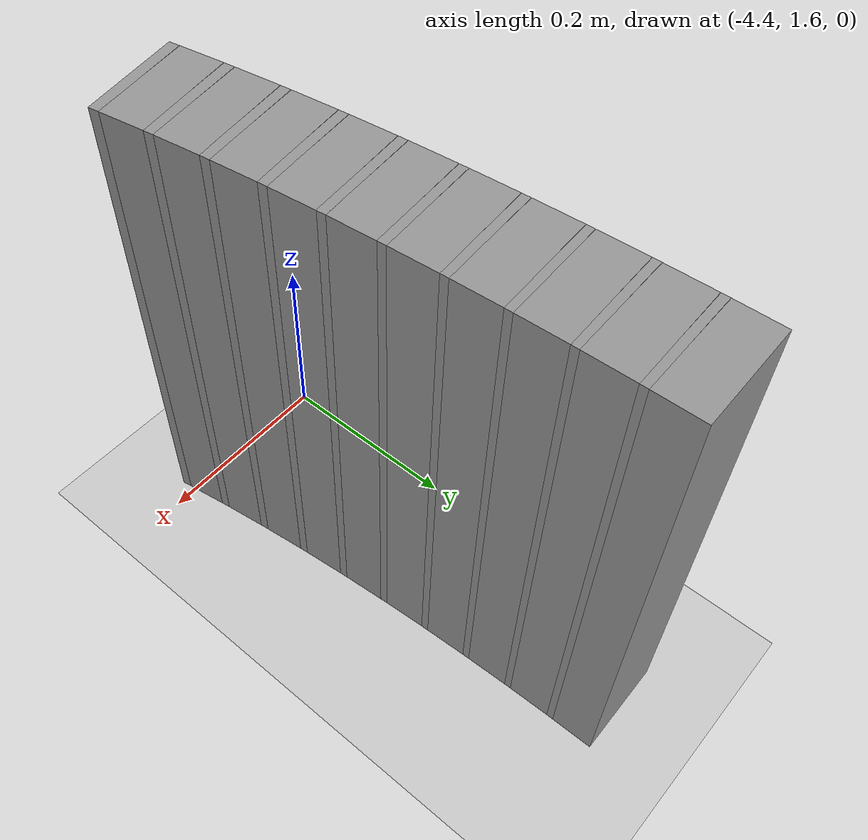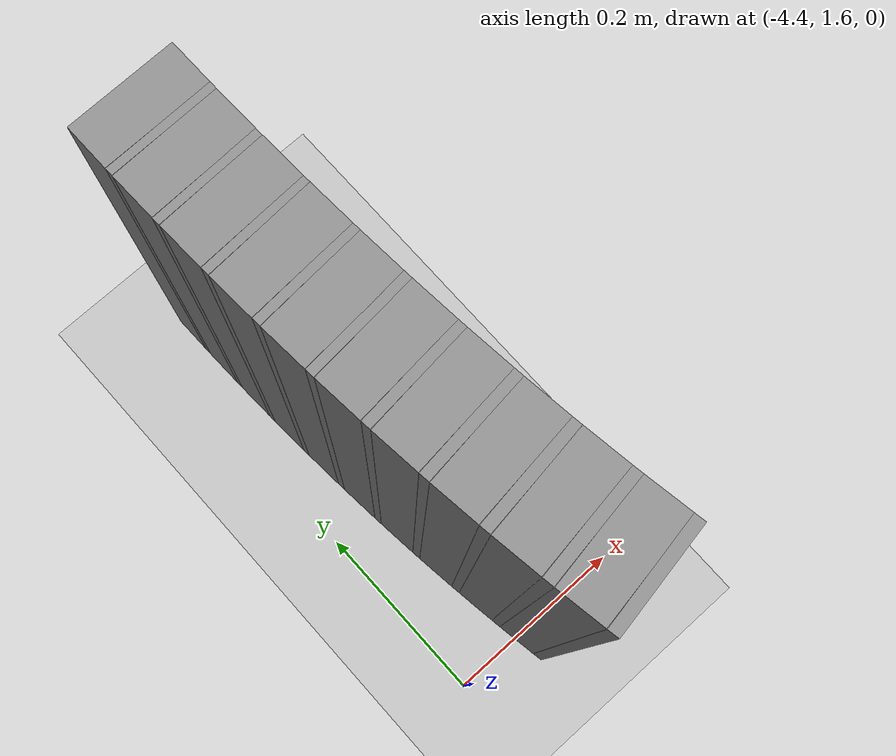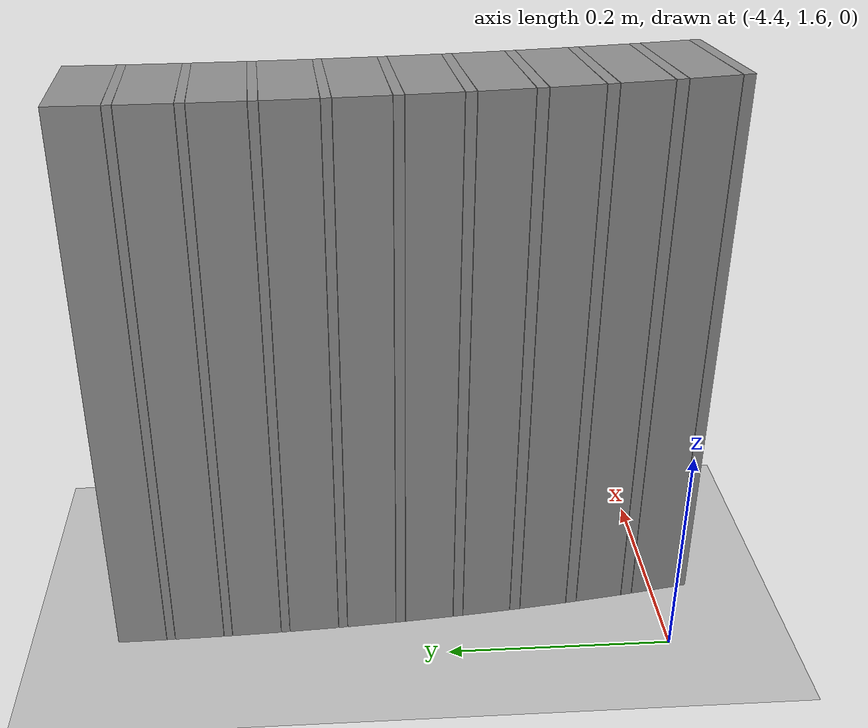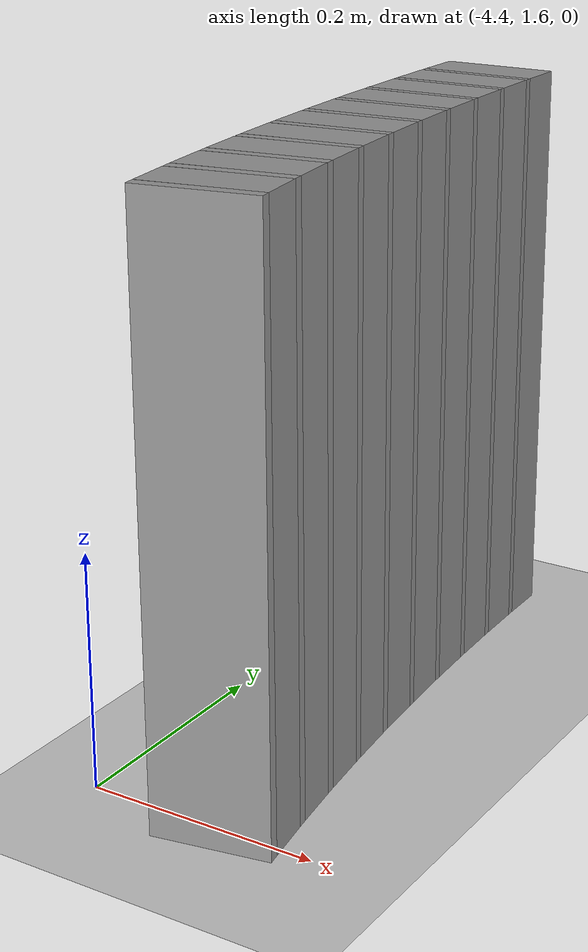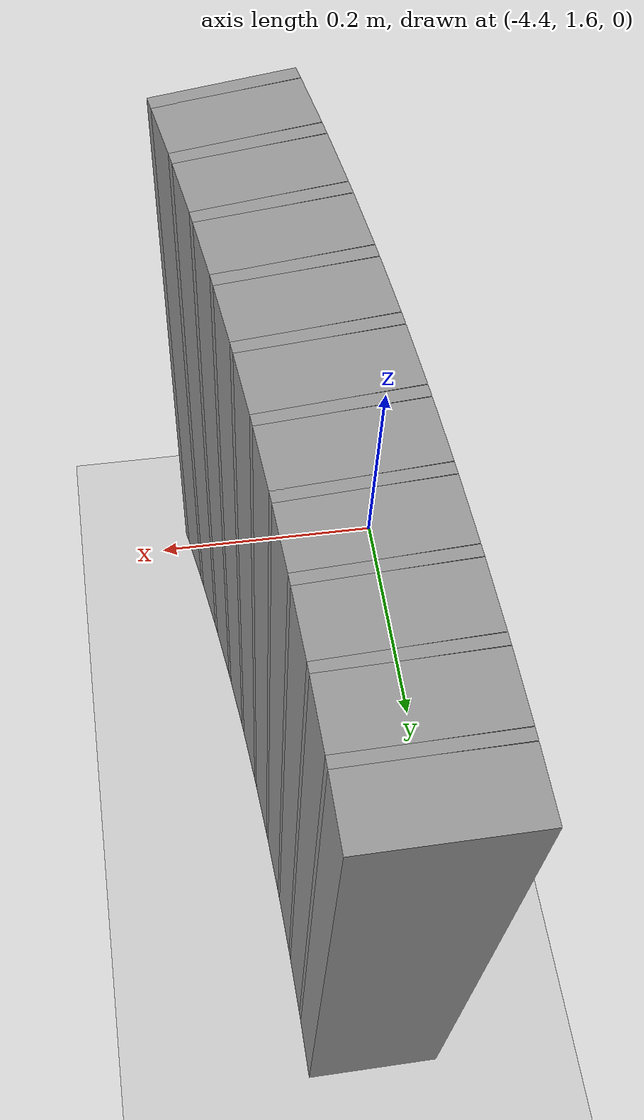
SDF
<sdf version="1.6">
 <world name="default">
  <include><uri>model://ground_plane</uri></include>
  <include><uri>model://sun</uri></include>
  <model name="wall_617_inward">
   <static>true</static>
   <link name="link">
    <collision name="collision">
     <geometry><box><size>0.04306350777877824 0.1 0.5</size></box></geometry>
    </collision>
    <visual name="visual">
     <geometry><box><size>0.04306350777877824 0.1 0.5</size></box></geometry>
     <material>
      <script><uri>file://media/materials/scripts/gazebo.material</uri><name>Gazebo/Gray</name></script>
     </material>
    </visual>
   </link>
   <pose>-4.317399038979969 2.0765069255512207 0.25 0 0 -1.5594728835504148</pose>
  </model>
  <model name="wall_618_inward">
   <static>true</static>
   <link name="link">
    <collision name="collision">
     <geometry><box><size>0.007261801706883422 0.1 0.5</size></box></geometry>
    </collision>
    <visual name="visual">
     <geometry><box><size>0.007261801706883422 0.1 0.5</size></box></geometry>
     <material>
      <script><uri>file://media/materials/scripts/gazebo.material</uri><name>Gazebo/Gray</name></script>
     </material>
    </visual>
   </link>
   <pose>-4.317087753068394 2.0513462782617355 0.25 0 0 -1.5522110180183293</pose>
  </model>
  <model name="wall_619_inward">
   <static>true</static>
   <link name="link">
    <collision name="collision">
     <geometry><box><size>0.043529670780784194 0.1 0.5</size></box></geometry>
    </collision>
    <visual name="visual">
     <geometry><box><size>0.043529670780784194 0.1 0.5</size></box></geometry>
     <material>
      <script><uri>file://media/materials/scripts/gazebo.material</uri><name>Gazebo/Gray</name></script>
     </material>
    </visual>
   </link>
   <pose>-4.316457778682225 2.0259584389632073 0.25 0 0 -1.544949152486239</pose>
  </model>
  <model name="wall_620_inward">
   <static>true</static>
   <link name="link">
    <collision name="collision">
     <geometry><box><size>0.007316383443130212 0.1 0.5</size></box></geometry>
    </collision>
    <visual name="visual">
     <geometry><box><size>0.007316383443130212 0.1 0.5</size></box></geometry>
     <material>
      <script><uri>file://media/materials/scripts/gazebo.material</uri><name>Gazebo/Gray</name></script>
     </material>
    </visual>
   </link>
   <pose>-4.315773985170626 2.00054469323577 0.25 0 0 -1.5376327037678383</pose>
  </model>
  <model name="wall_621_inward">
   <static>true</static>
   <link name="link">
    <collision name="collision">
     <geometry><box><size>0.04390419618940958 0.1 0.5</size></box></geometry>
    </collision>
    <visual name="visual">
     <geometry><box><size>0.04390419618940958 0.1 0.5</size></box></geometry>
     <material>
      <script><uri>file://media/materials/scripts/gazebo.material</uri><name>Gazebo/Gray</name></script>
     </material>
    </visual>
   </link>
   <pose>-4.314764308678914 1.9749543982176399 0.25 0 0 -1.530316255049466</pose>
  </model>
  <model name="wall_622_inward">
   <static>true</static>
   <link name="link">
    <collision name="collision">
     <geometry><box><size>0.0075281113624470096 0.1 0.5</size></box></geometry>
    </collision>
    <visual name="visual">
     <geometry><box><size>0.0075281113624470096 0.1 0.5</size></box></geometry>
     <material>
      <script><uri>file://media/materials/scripts/gazebo.material</uri><name>Gazebo/Gray</name></script>
     </material>
    </visual>
   </link>
   <pose>-4.31369529250621 1.9492605645877754 0.25 0 0 -1.5227880725791791</pose>
  </model>
  <model name="wall_623_inward">
   <static>true</static>
   <link name="link">
    <collision name="collision">
     <geometry><box><size>0.044180123825124686 0.1 0.5</size></box></geometry>
    </collision>
    <visual name="visual">
     <geometry><box><size>0.044180123825124686 0.1 0.5</size></box></geometry>
     <material>
      <script><uri>file://media/materials/scripts/gazebo.material</uri><name>Gazebo/Gray</name></script>
     </material>
    </visual>
   </link>
   <pose>-4.312288483386402 1.9234448412321816 0.25 0 0 -1.5152598901087468</pose>
  </model>
  <model name="wall_624_inward">
   <static>true</static>
   <link name="link">
    <collision name="collision">
     <geometry><box><size>0.007888743305937019 0.1 0.5</size></box></geometry>
    </collision>
    <visual name="visual">
     <geometry><box><size>0.007888743305937019 0.1 0.5</size></box></geometry>
     <material>
      <script><uri>file://media/materials/scripts/gazebo.material</uri><name>Gazebo/Gray</name></script>
     </material>
    </visual>
   </link>
   <pose>-4.310812305494237 1.897452396032882 0.25 0 0 -1.5073710649780703</pose>
  </model>
  <model name="wall_625_inward">
   <static>true</static>
   <link name="link">
    <collision name="collision">
     <geometry><box><size>0.044351634569941484 0.1 0.5</size></box></geometry>
    </collision>
    <visual name="visual">
     <geometry><box><size>0.044351634569941484 0.1 0.5</size></box></geometry>
     <material>
      <script><uri>file://media/materials/scripts/gazebo.material</uri><name>Gazebo/Gray</name></script>
     </material>
    </visual>
   </link>
   <pose>-4.308982192345477 1.8713965039449914 0.25 0 0 -1.4994822398474863</pose>
  </model>
  <model name="wall_626_inward">
   <static>true</static>
   <link name="link">
    <collision name="collision">
     <geometry><box><size>0.008333026052984908 0.1 0.5</size></box></geometry>
    </collision>
    <visual name="visual">
     <geometry><box><size>0.008333026052984908 0.1 0.5</size></box></geometry>
     <material>
      <script><uri>file://media/materials/scripts/gazebo.material</uri><name>Gazebo/Gray</name></script>
     </material>
    </visual>
   </link>
   <pose>-4.30707058391674 1.845123748028681 0.25 0 0 -1.4911491173515483</pose>
  </model>
  <model name="wall_627_inward">
   <static>true</static>
   <link name="link">
    <collision name="collision">
     <geometry><box><size>0.044418561032081465 0.1 0.5</size></box></geometry>
    </collision>
    <visual name="visual">
     <geometry><box><size>0.044418561032081465 0.1 0.5</size></box></geometry>
     <material>
      <script><uri>file://media/materials/scripts/gazebo.material</uri><name>Gazebo/Gray</name></script>
     </material>
    </visual>
   </link>
   <pose>-4.304787623491387 1.8188470634775915 0.25 0 0 -1.4828159948555926</pose>
  </model>
  <model name="wall_628_inward">
   <static>true</static>
   <link name="link">
    <collision name="collision">
     <geometry><box><size>0.008817197110022258 0.1 0.5</size></box></geometry>
    </collision>
    <visual name="visual">
     <geometry><box><size>0.008817197110022258 0.1 0.5</size></box></geometry>
     <material>
      <script><uri>file://media/materials/scripts/gazebo.material</uri><name>Gazebo/Gray</name></script>
     </material>
    </visual>
   </link>
   <pose>-4.302410087604299 1.7923357225600707 0.25 0 0 -1.4739986834957608</pose>
  </model>
  <model name="wall_629_inward">
   <static>true</static>
   <link name="link">
    <collision name="collision">
     <geometry><box><size>0.044382643585645656 0.1 0.5</size></box></geometry>
    </collision>
    <visual name="visual">
     <geometry><box><size>0.044382643585645656 0.1 0.5</size></box></geometry>
     <material>
      <script><uri>file://media/materials/scripts/gazebo.material</uri><name>Gazebo/Gray</name></script>
     </material>
    </visual>
   </link>
   <pose>-4.299644631087416 1.7658800916506054 0.25 0 0 -1.4651813721358626</pose>
  </model>
  <model name="wall_630_inward">
   <static>true</static>
   <link name="link">
    <collision name="collision">
     <geometry><box><size>0.009309000108227196 0.1 0.5</size></box></geometry>
    </collision>
    <visual name="visual">
     <geometry><box><size>0.009309000108227196 0.1 0.5</size></box></geometry>
     <material>
      <script><uri>file://media/materials/scripts/gazebo.material</uri><name>Gazebo/Gray</name></script>
     </material>
    </visual>
   </link>
   <pose>-4.296771512946872 1.739188625003282 0.25 0 0 -1.4558722375733433</pose>
  </model>
  <model name="wall_631_inward">
   <static>true</static>
   <link name="link">
    <collision name="collision">
     <geometry><box><size>0.04424808135298307 0.1 0.5</size></box></geometry>
    </collision>
    <visual name="visual">
     <geometry><box><size>0.04424808135298307 0.1 0.5</size></box></geometry>
     <material>
      <script><uri>file://media/materials/scripts/gazebo.material</uri><name>Gazebo/Gray</name></script>
     </material>
    </visual>
   </link>
   <pose>-4.293496299238418 1.7126112982949744 0.25 0 0 -1.4465631030107584</pose>
  </model>
  <model name="wall_632_inward">
   <static>true</static>
   <link name="link">
    <collision name="collision">
     <geometry><box><size>0.009745922445701287 0.1 0.5</size></box></geometry>
    </collision>
    <visual name="visual">
     <geometry><box><size>0.009745922445701287 0.1 0.5</size></box></geometry>
     <material>
      <script><uri>file://media/materials/scripts/gazebo.material</uri><name>Gazebo/Gray</name></script>
     </material>
    </visual>
   </link>
   <pose>-4.290103898550884 1.6858284775173535 0.25 0 0 -1.4368170262756617</pose>
  </model>
  <model name="wall_633_inward">
   <static>true</static>
   <link name="link">
    <collision name="collision">
     <geometry><box><size>0.04402177817664578 0.1 0.5</size></box></geometry>
    </collision>
    <visual name="visual">
     <geometry><box><size>0.04402177817664578 0.1 0.5</size></box></geometry>
     <material>
      <script><uri>file://media/materials/scripts/gazebo.material</uri><name>Gazebo/Gray</name></script>
     </material>
    </visual>
   </link>
   <pose>-4.286300330992481 1.659215245969242 0.25 0 0 -1.4270709495405018</pose>
  </model>
  <model name="wall_634_inward">
   <static>true</static>
   <link name="link">
    <collision name="collision">
     <geometry><box><size>0.0101136848474493 0.1 0.5</size></box></geometry>
    </collision>
    <visual name="visual">
     <geometry><box><size>0.0101136848474493 0.1 0.5</size></box></geometry>
     <material>
      <script><uri>file://media/materials/scripts/gazebo.material</uri><name>Gazebo/Gray</name></script>
     </material>
    </visual>
   </link>
   <pose>-4.282372812013271 1.6324341836581315 0.25 0 0 -1.416957092269351</pose>
  </model>
  <model name="wall_635_inward">
   <static>true</static>
   <link name="link">
    <collision name="collision">
     <geometry><box><size>0.04371115000804038 0.1 0.5</size></box></geometry>
    </collision>
    <visual name="visual">
     <geometry><box><size>0.04371115000804038 0.1 0.5</size></box></geometry>
     <material>
      <script><uri>file://media/materials/scripts/gazebo.material</uri><name>Gazebo/Gray</name></script>
     </material>
    </visual>
   </link>
   <pose>-4.2780306789862195 1.6058745754615908 0.25 0 0 -1.4068432349981697</pose>
  </model>
  <model name="wall_636_inward">
   <static>true</static>
   <link name="link">
    <collision name="collision">
     <geometry><box><size>0.010358071167419425 0.1 0.5</size></box></geometry>
    </collision>
    <visual name="visual">
     <geometry><box><size>0.010358071167419425 0.1 0.5</size></box></geometry>
     <material>
      <script><uri>file://media/materials/scripts/gazebo.material</uri><name>Gazebo/Gray</name></script>
     </material>
    </visual>
   </link>
   <pose>-4.273565221884079 1.5792115351628304 0.25 0 0 -1.3964849786028777</pose>
  </model>
 </world>
</sdf>
